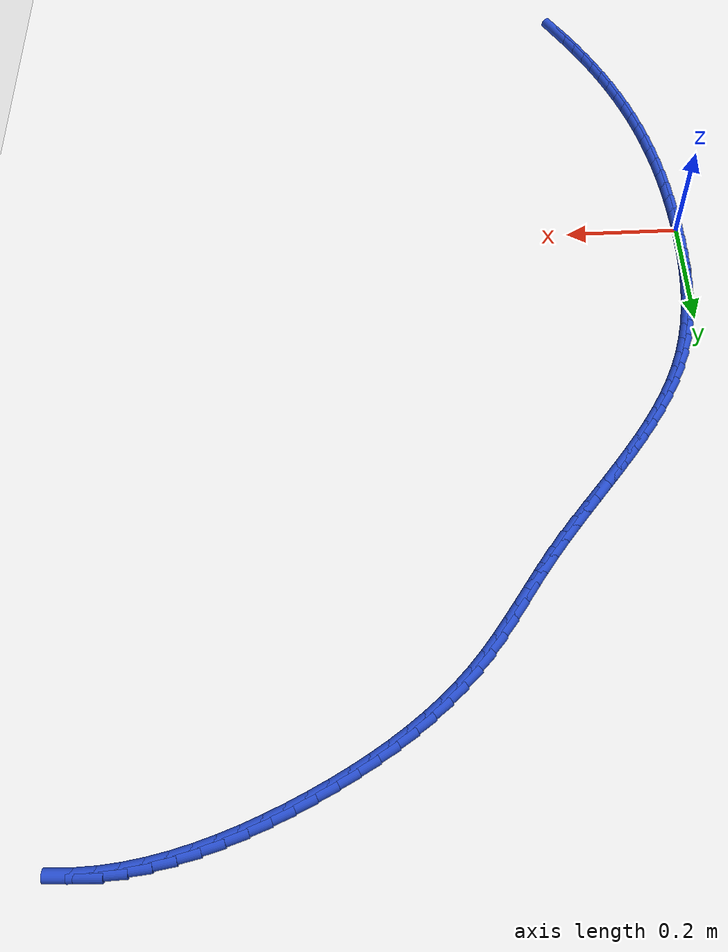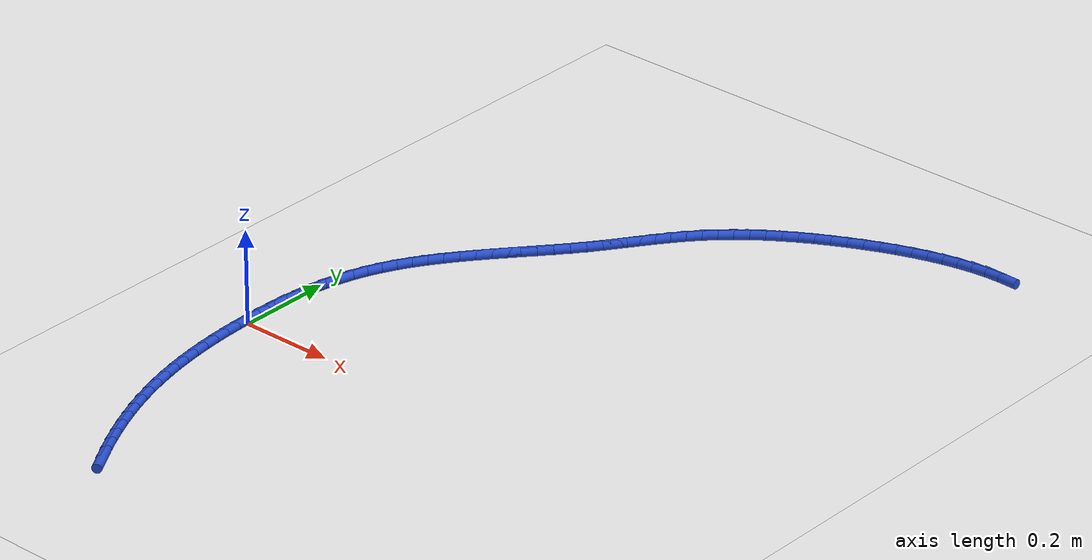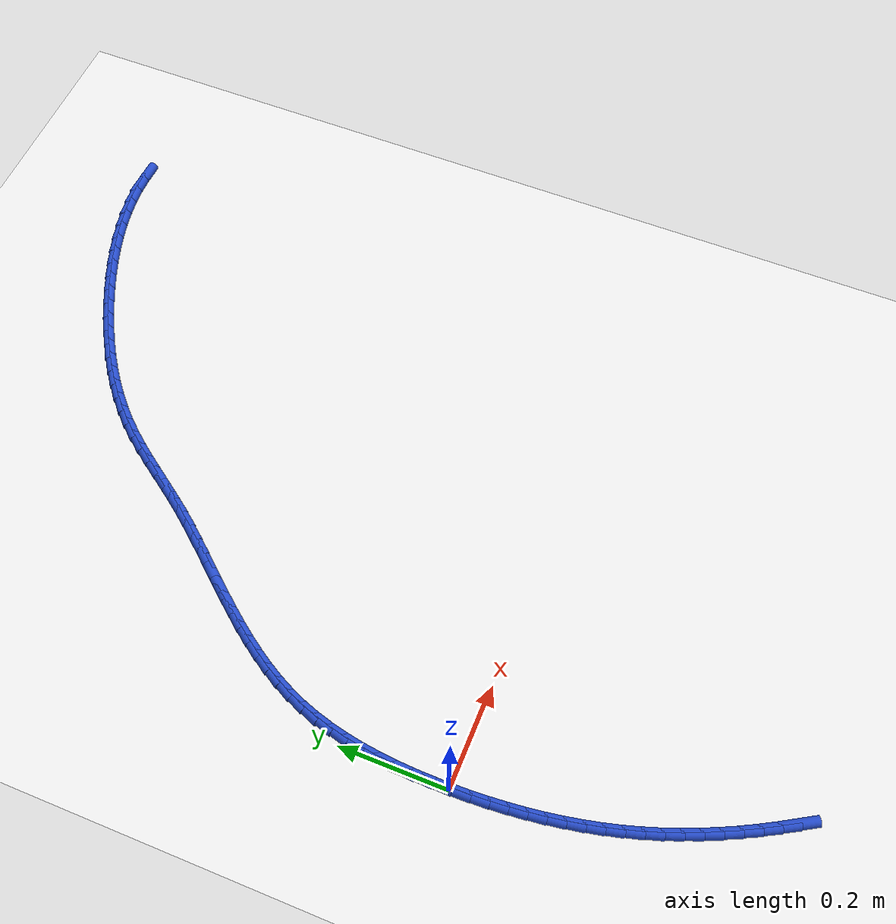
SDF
<sdf version="1.6">
 <world name="default">
  <model name="ground_plane">
   <static>1</static>
   <link name="link">
    <collision name="collision">
     <geometry><plane><normal>0 0 1</normal><size>100 100</size></plane></geometry>
     <surface><friction><ode><mu>100</mu><mu2>50</mu2></ode></friction></surface>
    </collision>
    <visual name="visual">
     <cast_shadows>0</cast_shadows>
     <geometry><plane><normal>0 0 1</normal><size>100 100</size></plane></geometry>
     <material>
      <script><uri>file://media/materials/scripts/gazebo.material</uri><name>Gazebo/WhiteGlow</name></script>
     </material>
    </visual>
   </link>
  </model>
  <model name="line">
   <link name="link_0">
    <pose>2.2551405187698492e-17 6.245004513516506e-17 0.01 0 1.57 -1.5640277802827918</pose>
    <collision name="collision">
     <geometry><cylinder><radius>0.01</radius><length>0.08</length></cylinder></geometry>
    </collision>
    <visual name="visual">
     <material>
      <script><name>Gazebo/Blue</name><uri>file://media/materials/scripts/gazebo.material</uri></script>
     </material>
     <geometry><cylinder><radius>0.01</radius><length>0.08</length></cylinder></geometry>
    </visual>
   </link>
   <link name="link_1">
    <pose>-0.00021804687882136633 0.03221423515539994 0.01 0 1.57 1.550294958255304</pose>
    <collision name="collision">
     <geometry><cylinder><radius>0.01</radius><length>0.08</length></cylinder></geometry>
    </collision>
    <visual name="visual">
     <material>
      <script><name>Gazebo/Blue</name><uri>file://media/materials/scripts/gazebo.material</uri></script>
     </material>
     <geometry><cylinder><radius>0.01</radius><length>0.08</length></cylinder></geometry>
    </visual>
   </link>
   <link name="link_2">
    <pose>0.00044337836184048755 0.06447220709343172 0.01 0 1.57 1.5193624895453874</pose>
    <collision name="collision">
     <geometry><cylinder><radius>0.01</radius><length>0.08</length></cylinder></geometry>
    </collision>
    <visual name="visual">
     <material>
      <script><name>Gazebo/Blue</name><uri>file://media/materials/scripts/gazebo.material</uri></script>
     </material>
     <geometry><cylinder><radius>0.01</radius><length>0.08</length></cylinder></geometry>
    </visual>
   </link>
   <link name="link_3">
    <pose>0.002100509430965067 0.09666248531929927 0.01 0 1.57 1.4845078215723275</pose>
    <collision name="collision">
     <geometry><cylinder><radius>0.01</radius><length>0.08</length></cylinder></geometry>
    </collision>
    <visual name="visual">
     <material>
      <script><name>Gazebo/Blue</name><uri>file://media/materials/scripts/gazebo.material</uri></script>
     </material>
     <geometry><cylinder><radius>0.01</radius><length>0.08</length></cylinder></geometry>
    </visual>
   </link>
   <link name="link_4">
    <pose>0.004869580037531858 0.12867363933820639 0.01 0 1.57 1.4454429252567342</pose>
    <collision name="collision">
     <geometry><cylinder><radius>0.01</radius><length>0.08</length></cylinder></geometry>
    </collision>
    <visual name="visual">
     <material>
      <script><name>Gazebo/Blue</name><uri>file://media/materials/scripts/gazebo.material</uri></script>
     </material>
     <geometry><cylinder><radius>0.01</radius><length>0.08</length></cylinder></geometry>
    </visual>
   </link>
   <link name="link_5">
    <pose>0.008866823890520344 0.16039423865535699 0.01 0 1.57 1.401863563391801</pose>
    <collision name="collision">
     <geometry><cylinder><radius>0.01</radius><length>0.08</length></cylinder></geometry>
    </collision>
    <visual name="visual">
     <material>
      <script><name>Gazebo/Blue</name><uri>file://media/materials/scripts/gazebo.material</uri></script>
     </material>
     <geometry><cylinder><radius>0.01</radius><length>0.08</length></cylinder></geometry>
    </visual>
   </link>
   <link name="link_6">
    <pose>0.014208474698910012 0.19171285277595485 0.01 0 1.57 1.3534674927857533</pose>
    <collision name="collision">
     <geometry><cylinder><radius>0.01</radius><length>0.08</length></cylinder></geometry>
    </collision>
    <visual name="visual">
     <material>
      <script><name>Gazebo/Blue</name><uri>file://media/materials/scripts/gazebo.material</uri></script>
     </material>
     <geometry><cylinder><radius>0.01</radius><length>0.08</length></cylinder></geometry>
    </visual>
   </link>
   <link name="link_7">
    <pose>0.02101076617168035 0.22251805120520388 0.01 0 1.57 1.2999806855689242</pose>
    <collision name="collision">
     <geometry><cylinder><radius>0.01</radius><length>0.08</length></cylinder></geometry>
    </collision>
    <visual name="visual">
     <material>
      <script><name>Gazebo/Blue</name><uri>file://media/materials/scripts/gazebo.material</uri></script>
     </material>
     <geometry><cylinder><radius>0.01</radius><length>0.08</length></cylinder></geometry>
    </visual>
   </link>
   <link name="link_8">
    <pose>0.02938993201781083 0.25269840344830774 0.01 0 1.57 1.2411931809515189</pose>
    <collision name="collision">
     <geometry><cylinder><radius>0.01</radius><length>0.08</length></cylinder></geometry>
    </collision>
    <visual name="visual">
     <material>
      <script><name>Gazebo/Blue</name><uri>file://media/materials/scripts/gazebo.material</uri></script>
     </material>
     <geometry><cylinder><radius>0.01</radius><length>0.08</length></cylinder></geometry>
    </visual>
   </link>
   <link name="link_9">
    <pose>0.03946220594628094 0.28214247901047046 0.01 0 1.57 1.1773535749368804</pose>
    <collision name="collision">
     <geometry><cylinder><radius>0.01</radius><length>0.08</length></cylinder></geometry>
    </collision>
    <visual name="visual">
     <material>
      <script><name>Gazebo/Blue</name><uri>file://media/materials/scripts/gazebo.material</uri></script>
     </material>
     <geometry><cylinder><radius>0.01</radius><length>0.08</length></cylinder></geometry>
    </visual>
   </link>
   <link name="link_10">
    <pose>0.051334707038882654 0.3107450504873547 0.01 0 1.57 1.114690556031248</pose>
    <collision name="collision">
     <geometry><cylinder><radius>0.01</radius><length>0.08</length></cylinder></geometry>
    </collision>
    <visual name="visual">
     <material>
      <script><name>Gazebo/Blue</name><uri>file://media/materials/scripts/gazebo.material</uri></script>
     </material>
     <geometry><cylinder><radius>0.01</radius><length>0.08</length></cylinder></geometry>
    </visual>
   </link>
   <link name="link_11">
    <pose>0.06495586619032379 0.33850888799980716 0.01 0 1.57 1.0588263026917826</pose>
    <collision name="collision">
     <geometry><cylinder><radius>0.01</radius><length>0.08</length></cylinder></geometry>
    </collision>
    <visual name="visual">
     <material>
      <script><name>Gazebo/Blue</name><uri>file://media/materials/scripts/gazebo.material</uri></script>
     </material>
     <geometry><cylinder><radius>0.01</radius><length>0.08</length></cylinder></geometry>
    </visual>
   </link>
   <link name="link_12">
    <pose>0.08013943676492061 0.3655284183965478 0.01 0 1.57 1.0102194662250645</pose>
    <collision name="collision">
     <geometry><cylinder><radius>0.01</radius><length>0.08</length></cylinder></geometry>
    </collision>
    <visual name="visual">
     <material>
      <script><name>Gazebo/Blue</name><uri>file://media/materials/scripts/gazebo.material</uri></script>
     </material>
     <geometry><cylinder><radius>0.01</radius><length>0.08</length></cylinder></geometry>
    </visual>
   </link>
   <link name="link_13">
    <pose>0.09669490018429547 0.39190097585826017 0.01 0 1.57 0.9689408644709877</pose>
    <collision name="collision">
     <geometry><cylinder><radius>0.01</radius><length>0.08</length></cylinder></geometry>
    </collision>
    <visual name="visual">
     <material>
      <script><name>Gazebo/Blue</name><uri>file://media/materials/scripts/gazebo.material</uri></script>
     </material>
     <geometry><cylinder><radius>0.01</radius><length>0.08</length></cylinder></geometry>
    </visual>
   </link>
   <link name="link_14">
    <pose>0.11443173787007076 0.41772389456562875 0.01 0 1.57 0.9349128984346179</pose>
    <collision name="collision">
     <geometry><cylinder><radius>0.01</radius><length>0.08</length></cylinder></geometry>
    </collision>
    <visual name="visual">
     <material>
      <script><name>Gazebo/Blue</name><uri>file://media/materials/scripts/gazebo.material</uri></script>
     </material>
     <geometry><cylinder><radius>0.01</radius><length>0.08</length></cylinder></geometry>
    </visual>
   </link>
   <link name="link_15">
    <pose>0.13315943124386873 0.44309450869933714 0.01 0 1.57 0.9079767573073776</pose>
    <collision name="collision">
     <geometry><cylinder><radius>0.01</radius><length>0.08</length></cylinder></geometry>
    </collision>
    <visual name="visual">
     <material>
      <script><name>Gazebo/Blue</name><uri>file://media/materials/scripts/gazebo.material</uri></script>
     </material>
     <geometry><cylinder><radius>0.01</radius><length>0.08</length></cylinder></geometry>
    </visual>
   </link>
   <link name="link_16">
    <pose>0.15268746172731182 0.4681101524400696 0.01 0 1.57 0.8879455333379783</pose>
    <collision name="collision">
     <geometry><cylinder><radius>0.01</radius><length>0.08</length></cylinder></geometry>
    </collision>
    <visual name="visual">
     <material>
      <script><name>Gazebo/Blue</name><uri>file://media/materials/scripts/gazebo.material</uri></script>
     </material>
     <geometry><cylinder><radius>0.01</radius><length>0.08</length></cylinder></geometry>
    </visual>
   </link>
   <link name="link_17">
    <pose>0.17282531074202226 0.49286815996851 0.01 0 1.57 0.874642692186686</pose>
    <collision name="collision">
     <geometry><cylinder><radius>0.01</radius><length>0.08</length></cylinder></geometry>
    </collision>
    <visual name="visual">
     <material>
      <script><name>Gazebo/Blue</name><uri>file://media/materials/scripts/gazebo.material</uri></script>
     </material>
     <geometry><cylinder><radius>0.01</radius><length>0.08</length></cylinder></geometry>
    </visual>
   </link>
   <link name="link_18">
    <pose>0.1933824597096225 0.5174658654653426 0.01 0 1.57 0.8679276673018819</pose>
    <collision name="collision">
     <geometry><cylinder><radius>0.01</radius><length>0.08</length></cylinder></geometry>
    </collision>
    <visual name="visual">
     <material>
      <script><name>Gazebo/Blue</name><uri>file://media/materials/scripts/gazebo.material</uri></script>
     </material>
     <geometry><cylinder><radius>0.01</radius><length>0.08</length></cylinder></geometry>
    </visual>
   </link>
   <link name="link_19">
    <pose>0.21416839005173482 0.5420006031112512 0.01 0 1.57 0.8677109606641003</pose>
    <collision name="collision">
     <geometry><cylinder><radius>0.01</radius><length>0.08</length></cylinder></geometry>
    </collision>
    <visual name="visual">
     <material>
      <script><name>Gazebo/Blue</name><uri>file://media/materials/scripts/gazebo.material</uri></script>
     </material>
     <geometry><cylinder><radius>0.01</radius><length>0.08</length></cylinder></geometry>
    </visual>
   </link>
   <link name="link_20">
    <pose>0.23499258318998162 0.5665697070869198 0.01 0 1.57 0.8739607717565215</pose>
    <collision name="collision">
     <geometry><cylinder><radius>0.01</radius><length>0.08</length></cylinder></geometry>
    </collision>
    <visual name="visual">
     <material>
      <script><name>Gazebo/Blue</name><uri>file://media/materials/scripts/gazebo.material</uri></script>
     </material>
     <geometry><cylinder><radius>0.01</radius><length>0.08</length></cylinder></geometry>
    </visual>
   </link>
   <link name="link_21">
    <pose>0.2556645205459852 0.5912705115730326 0.01 0 1.57 0.886702367492394</pose>
    <collision name="collision">
     <geometry><cylinder><radius>0.01</radius><length>0.08</length></cylinder></geometry>
    </collision>
    <visual name="visual">
     <material>
      <script><name>Gazebo/Blue</name><uri>file://media/materials/scripts/gazebo.material</uri></script>
     </material>
     <geometry><cylinder><radius>0.01</radius><length>0.08</length></cylinder></geometry>
    </visual>
   </link>
   <link name="link_22">
    <pose>0.27599368354136783 0.6162003507502734 0.01 0 1.57 0.9060104577766708</pose>
    <collision name="collision">
     <geometry><cylinder><radius>0.01</radius><length>0.08</length></cylinder></geometry>
    </collision>
    <visual name="visual">
     <material>
      <script><name>Gazebo/Blue</name><uri>file://media/materials/scripts/gazebo.material</uri></script>
     </material>
     <geometry><cylinder><radius>0.01</radius><length>0.08</length></cylinder></geometry>
    </visual>
   </link>
   <link name="link_23">
    <pose>0.29578955359775205 0.6414565587993264 0.01 0 1.57 0.9312137643740723</pose>
    <collision name="collision">
     <geometry><cylinder><radius>0.01</radius><length>0.08</length></cylinder></geometry>
    </collision>
    <visual name="visual">
     <material>
      <script><name>Gazebo/Blue</name><uri>file://media/materials/scripts/gazebo.material</uri></script>
     </material>
     <geometry><cylinder><radius>0.01</radius><length>0.08</length></cylinder></geometry>
    </visual>
   </link>
   <link name="link_24">
    <pose>0.3148822085674277 0.6671223453819348 0.01 0 1.57 0.9516073168095652</pose>
    <collision name="collision">
     <geometry><cylinder><radius>0.01</radius><length>0.08</length></cylinder></geometry>
    </collision>
    <visual name="visual">
     <material>
      <script><name>Gazebo/Blue</name><uri>file://media/materials/scripts/gazebo.material</uri></script>
     </material>
     <geometry><cylinder><radius>0.01</radius><length>0.08</length></cylinder></geometry>
    </visual>
   </link>
   <link name="link_25">
    <pose>0.3333860713298848 0.693085923425355 0.01 0 1.57 0.9592552546301093</pose>
    <collision name="collision">
     <geometry><cylinder><radius>0.01</radius><length>0.08</length></cylinder></geometry>
    </collision>
    <visual name="visual">
     <material>
      <script><name>Gazebo/Blue</name><uri>file://media/materials/scripts/gazebo.material</uri></script>
     </material>
     <geometry><cylinder><radius>0.01</radius><length>0.08</length></cylinder></geometry>
    </visual>
   </link>
   <link name="link_26">
    <pose>0.3516228686630927 0.7190933420087593 0.01 0 1.57 0.9538451383325849</pose>
    <collision name="collision">
     <geometry><cylinder><radius>0.01</radius><length>0.08</length></cylinder></geometry>
    </collision>
    <visual name="visual">
     <material>
      <script><name>Gazebo/Blue</name><uri>file://media/materials/scripts/gazebo.material</uri></script>
     </material>
     <geometry><cylinder><radius>0.01</radius><length>0.08</length></cylinder></geometry>
    </visual>
   </link>
   <link name="link_27">
    <pose>0.3699190316049898 0.7448874241470527 0.01 0 1.57 0.9351942945684564</pose>
    <collision name="collision">
     <geometry><cylinder><radius>0.01</radius><length>0.08</length></cylinder></geometry>
    </collision>
    <visual name="visual">
     <material>
      <script><name>Gazebo/Blue</name><uri>file://media/materials/scripts/gazebo.material</uri></script>
     </material>
     <geometry><cylinder><radius>0.01</radius><length>0.08</length></cylinder></geometry>
    </visual>
   </link>
   <link name="link_28">
    <pose>0.3886009911935139 0.7702109928551397 0.01 0 1.57 0.90309856681486</pose>
    <collision name="collision">
     <geometry><cylinder><radius>0.01</radius><length>0.08</length></cylinder></geometry>
    </collision>
    <visual name="visual">
     <material>
      <script><name>Gazebo/Blue</name><uri>file://media/materials/scripts/gazebo.material</uri></script>
     </material>
     <geometry><cylinder><radius>0.01</radius><length>0.08</length></cylinder></geometry>
    </visual>
   </link>
   <link name="link_29">
    <pose>0.4079951784666028 0.7948068711479248 0.01 0 1.57 0.8574647933892661</pose>
    <collision name="collision">
     <geometry><cylinder><radius>0.01</radius><length>0.08</length></cylinder></geometry>
    </collision>
    <visual name="visual">
     <material>
      <script><name>Gazebo/Blue</name><uri>file://media/materials/scripts/gazebo.material</uri></script>
     </material>
     <geometry><cylinder><radius>0.01</radius><length>0.08</length></cylinder></geometry>
    </visual>
   </link>
   <link name="link_30">
    <pose>0.42842721465625355 0.8184184916501661 0.01 0 1.57 0.8033062774453298</pose>
    <collision name="collision">
     <geometry><cylinder><radius>0.01</radius><length>0.08</length></cylinder></geometry>
    </collision>
    <visual name="visual">
     <material>
      <script><name>Gazebo/Blue</name><uri>file://media/materials/scripts/gazebo.material</uri></script>
     </material>
     <geometry><cylinder><radius>0.01</radius><length>0.08</length></cylinder></geometry>
    </visual>
   </link>
   <link name="link_31">
    <pose>0.4500999522898263 0.8408817054392804 0.01 0 1.57 0.7509801072675774</pose>
    <collision name="collision">
     <geometry><cylinder><radius>0.01</radius><length>0.08</length></cylinder></geometry>
    </collision>
    <visual name="visual">
     <material>
      <script><name>Gazebo/Blue</name><uri>file://media/materials/scripts/gazebo.material</uri></script>
     </material>
     <geometry><cylinder><radius>0.01</radius><length>0.08</length></cylinder></geometry>
    </visual>
   </link>
   <link name="link_32">
    <pose>0.47296315898855296 0.8622228821412431 0.01 0 1.57 0.7018883308049515</pose>
    <collision name="collision">
     <geometry><cylinder><radius>0.01</radius><length>0.08</length></cylinder></geometry>
    </collision>
    <visual name="visual">
     <material>
      <script><name>Gazebo/Blue</name><uri>file://media/materials/scripts/gazebo.material</uri></script>
     </material>
     <geometry><cylinder><radius>0.01</radius><length>0.08</length></cylinder></geometry>
    </visual>
   </link>
   <link name="link_33">
    <pose>0.49693536993535103 0.8824919026964977 0.01 0 1.57 0.6561018103679742</pose>
    <collision name="collision">
     <geometry><cylinder><radius>0.01</radius><length>0.08</length></cylinder></geometry>
    </collision>
    <visual name="visual">
     <material>
      <script><name>Gazebo/Blue</name><uri>file://media/materials/scripts/gazebo.material</uri></script>
     </material>
     <geometry><cylinder><radius>0.01</radius><length>0.08</length></cylinder></geometry>
    </visual>
   </link>
   <link name="link_34">
    <pose>0.5219351203131383 0.9017386480454888 0.01 0 1.57 0.6136242464177583</pose>
    <collision name="collision">
     <geometry><cylinder><radius>0.01</radius><length>0.08</length></cylinder></geometry>
    </collision>
    <visual name="visual">
     <material>
      <script><name>Gazebo/Blue</name><uri>file://media/materials/scripts/gazebo.material</uri></script>
     </material>
     <geometry><cylinder><radius>0.01</radius><length>0.08</length></cylinder></geometry>
    </visual>
   </link>
   <link name="link_35">
    <pose>0.5478809453048326 0.9200129991286612 0.01 0 1.57 0.5744076051759945</pose>
    <collision name="collision">
     <geometry><cylinder><radius>0.01</radius><length>0.08</length></cylinder></geometry>
    </collision>
    <visual name="visual">
     <material>
      <script><name>Gazebo/Blue</name><uri>file://media/materials/scripts/gazebo.material</uri></script>
     </material>
     <geometry><cylinder><radius>0.01</radius><length>0.08</length></cylinder></geometry>
    </visual>
   </link>
   <link name="link_36">
    <pose>0.5746913800933513 0.9373648368864588 0.01 0 1.57 0.5383666690072105</pose>
    <collision name="collision">
     <geometry><cylinder><radius>0.01</radius><length>0.08</length></cylinder></geometry>
    </collision>
    <visual name="visual">
     <material>
      <script><name>Gazebo/Blue</name><uri>file://media/materials/scripts/gazebo.material</uri></script>
     </material>
     <geometry><cylinder><radius>0.01</radius><length>0.08</length></cylinder></geometry>
    </visual>
   </link>
   <link name="link_37">
    <pose>0.6022849598616123 0.9538440422593262 0.01 0 1.57 0.5053918472926673</pose>
    <collision name="collision">
     <geometry><cylinder><radius>0.01</radius><length>0.08</length></cylinder></geometry>
    </collision>
    <visual name="visual">
     <material>
      <script><name>Gazebo/Blue</name><uri>file://media/materials/scripts/gazebo.material</uri></script>
     </material>
     <geometry><cylinder><radius>0.01</radius><length>0.08</length></cylinder></geometry>
    </visual>
   </link>
   <link name="link_38">
    <pose>0.6305802197925333 0.9695004961877077 0.01 0 1.57 0.4753598841261037</pose>
    <collision name="collision">
     <geometry><cylinder><radius>0.01</radius><length>0.08</length></cylinder></geometry>
    </collision>
    <visual name="visual">
     <material>
      <script><name>Gazebo/Blue</name><uri>file://media/materials/scripts/gazebo.material</uri></script>
     </material>
     <geometry><cylinder><radius>0.01</radius><length>0.08</length></cylinder></geometry>
    </visual>
   </link>
   <link name="link_39">
    <pose>0.659495695069032 0.984384079612048 0.01 0 1.57 0.44732672768013937</pose>
    <collision name="collision">
     <geometry><cylinder><radius>0.01</radius><length>0.08</length></cylinder></geometry>
    </collision>
    <visual name="visual">
     <material>
      <script><name>Gazebo/Blue</name><uri>file://media/materials/scripts/gazebo.material</uri></script>
     </material>
     <geometry><cylinder><radius>0.01</radius><length>0.08</length></cylinder></geometry>
    </visual>
   </link>
   <link name="link_40">
    <pose>0.6889512959813663 0.9985157649912986 0.01 0 1.57 0.417384771851742</pose>
    <collision name="collision">
     <geometry><cylinder><radius>0.01</radius><length>0.08</length></cylinder></geometry>
    </collision>
    <visual name="visual">
     <material>
      <script><name>Gazebo/Blue</name><uri>file://media/materials/scripts/gazebo.material</uri></script>
     </material>
     <geometry><cylinder><radius>0.01</radius><length>0.08</length></cylinder></geometry>
    </visual>
   </link>
   <link name="link_41">
    <pose>0.7188732211885388 1.0117843262380575 0.01 0 1.57 0.38419602977444756</pose>
    <collision name="collision">
     <geometry><cylinder><radius>0.01</radius><length>0.08</length></cylinder></geometry>
    </collision>
    <visual name="visual">
     <material>
      <script><name>Gazebo/Blue</name><uri>file://media/materials/scripts/gazebo.material</uri></script>
     </material>
     <geometry><cylinder><radius>0.01</radius><length>0.08</length></cylinder></geometry>
    </visual>
   </link>
   <link name="link_42">
    <pose>0.7491894658521274 1.0240407699140095 0.01 0 1.57 0.3474453531147877</pose>
    <collision name="collision">
     <geometry><cylinder><radius>0.01</radius><length>0.08</length></cylinder></geometry>
    </collision>
    <visual name="visual">
     <material>
      <script><name>Gazebo/Blue</name><uri>file://media/materials/scripts/gazebo.material</uri></script>
     </material>
     <geometry><cylinder><radius>0.01</radius><length>0.08</length></cylinder></geometry>
    </visual>
   </link>
   <link name="link_43">
    <pose>0.7798280252733434 1.035136099645379 0.01 0 1.57 0.3067864797603333</pose>
    <collision name="collision">
     <geometry><cylinder><radius>0.01</radius><length>0.08</length></cylinder></geometry>
    </collision>
    <visual name="visual">
     <material>
      <script><name>Gazebo/Blue</name><uri>file://media/materials/scripts/gazebo.material</uri></script>
     </material>
     <geometry><cylinder><radius>0.01</radius><length>0.08</length></cylinder></geometry>
    </visual>
   </link>
   <link name="link_44">
    <pose>0.8107168947533977 1.0449213190583901 0.01 0 1.57 0.26185009065658865</pose>
    <collision name="collision">
     <geometry><cylinder><radius>0.01</radius><length>0.08</length></cylinder></geometry>
    </collision>
    <visual name="visual">
     <material>
      <script><name>Gazebo/Blue</name><uri>file://media/materials/scripts/gazebo.material</uri></script>
     </material>
     <geometry><cylinder><radius>0.01</radius><length>0.08</length></cylinder></geometry>
    </visual>
   </link>
   <link name="link_45">
    <pose>0.8417840695935013 1.0532474317792673 0.01 0 1.57 0.21225787239913654</pose>
    <collision name="collision">
     <geometry><cylinder><radius>0.01</radius><length>0.08</length></cylinder></geometry>
    </collision>
    <visual name="visual">
     <material>
      <script><name>Gazebo/Blue</name><uri>file://media/materials/scripts/gazebo.material</uri></script>
     </material>
     <geometry><cylinder><radius>0.01</radius><length>0.08</length></cylinder></geometry>
    </visual>
   </link>
   <link name="link_46">
    <pose>0.8729575450948656 1.0599654414342345 0.01 0 1.57 0.15764489733930329</pose>
    <collision name="collision">
     <geometry><cylinder><radius>0.01</radius><length>0.08</length></cylinder></geometry>
    </collision>
    <visual name="visual">
     <material>
      <script><name>Gazebo/Blue</name><uri>file://media/materials/scripts/gazebo.material</uri></script>
     </material>
     <geometry><cylinder><radius>0.01</radius><length>0.08</length></cylinder></geometry>
    </visual>
   </link>
   <link name="link_47">
    <pose>0.904165316558701 1.064926351649516 0.01 0 1.57 0.09769277592915032</pose>
    <collision name="collision">
     <geometry><cylinder><radius>0.01</radius><length>0.08</length></cylinder></geometry>
    </collision>
    <visual name="visual">
     <material>
      <script><name>Gazebo/Blue</name><uri>file://media/materials/scripts/gazebo.material</uri></script>
     </material>
     <geometry><cylinder><radius>0.01</radius><length>0.08</length></cylinder></geometry>
    </visual>
   </link>
   <link name="link_48">
    <pose>0.9353353792862192 1.067981166051336 0.01 0 1.57 0.032175336893997</pose>
    <collision name="collision">
     <geometry><cylinder><radius>0.01</radius><length>0.08</length></cylinder></geometry>
    </collision>
    <visual name="visual">
     <material>
      <script><name>Gazebo/Blue</name><uri>file://media/materials/scripts/gazebo.material</uri></script>
     </material>
     <geometry><cylinder><radius>0.01</radius><length>0.08</length></cylinder></geometry>
    </visual>
   </link>
   <link name="link_49">
    <pose>0.9663957285786312 1.068980888265919 0.01 0 1.57 -0.038983469901849005</pose>
    <collision name="collision">
     <geometry><cylinder><radius>0.01</radius><length>0.08</length></cylinder></geometry>
    </collision>
    <visual name="visual">
     <material>
      <script><name>Gazebo/Blue</name><uri>file://media/materials/scripts/gazebo.material</uri></script>
     </material>
     <geometry><cylinder><radius>0.01</radius><length>0.08</length></cylinder></geometry>
    </visual>
   </link>
   <link name="link_192">
    <pose>0.15873278770579158 -0.5400181294528917 0.01 0 1.57 -1.0232077169378109</pose>
    <collision name="collision">
     <geometry><cylinder><radius>0.01</radius><length>0.08</length></cylinder></geometry>
    </collision>
    <visual name="visual">
     <material>
      <script><name>Gazebo/Blue</name><uri>file://media/materials/scripts/gazebo.material</uri></script>
     </material>
     <geometry><cylinder><radius>0.01</radius><length>0.08</length></cylinder></geometry>
    </visual>
   </link>
   <link name="link_193">
    <pose>0.14220522928136203 -0.5129145418508296 0.01 0 1.57 -1.0508107575256826</pose>
    <collision name="collision">
     <geometry><cylinder><radius>0.01</radius><length>0.08</length></cylinder></geometry>
    </collision>
    <visual name="visual">
     <material>
      <script><name>Gazebo/Blue</name><uri>file://media/materials/scripts/gazebo.material</uri></script>
     </material>
     <geometry><cylinder><radius>0.01</radius><length>0.08</length></cylinder></geometry>
    </visual>
   </link>
   <link name="link_194">
    <pose>0.12642362637575105 -0.4853504776107603 0.01 0 1.57 -1.0791997281103185</pose>
    <collision name="collision">
     <geometry><cylinder><radius>0.01</radius><length>0.08</length></cylinder></geometry>
    </collision>
    <visual name="visual">
     <material>
      <script><name>Gazebo/Blue</name><uri>file://media/materials/scripts/gazebo.material</uri></script>
     </material>
     <geometry><cylinder><radius>0.01</radius><length>0.08</length></cylinder></geometry>
    </visual>
   </link>
   <link name="link_195">
    <pose>0.11143122392310123 -0.45735036190142614 0.01 0 1.57 -1.1084423691884921</pose>
    <collision name="collision">
     <geometry><cylinder><radius>0.01</radius><length>0.08</length></cylinder></geometry>
    </collision>
    <visual name="visual">
     <material>
      <script><name>Gazebo/Blue</name><uri>file://media/materials/scripts/gazebo.material</uri></script>
     </material>
     <geometry><cylinder><radius>0.01</radius><length>0.08</length></cylinder></geometry>
    </visual>
   </link>
   <link name="link_196">
    <pose>0.09727126685755481 -0.42893861989156823 0.01 0 1.57 -1.1386047875870247</pose>
    <collision name="collision">
     <geometry><cylinder><radius>0.01</radius><length>0.08</length></cylinder></geometry>
    </collision>
    <visual name="visual">
     <material>
      <script><name>Gazebo/Blue</name><uri>file://media/materials/scripts/gazebo.material</uri></script>
     </material>
     <geometry><cylinder><radius>0.01</radius><length>0.08</length></cylinder></geometry>
    </visual>
   </link>
   <link name="link_197">
    <pose>0.08398700011325512 -0.4001396767499296 0.01 0 1.57 -1.1697508278717272</pose>
    <collision name="collision">
     <geometry><cylinder><radius>0.01</radius><length>0.08</length></cylinder></geometry>
    </collision>
    <visual name="visual">
     <material>
      <script><name>Gazebo/Blue</name><uri>file://media/materials/scripts/gazebo.material</uri></script>
     </material>
     <geometry><cylinder><radius>0.01</radius><length>0.08</length></cylinder></geometry>
    </visual>
   </link>
   <link name="link_198">
    <pose>0.07162166862434435 -0.3709779576452519 0.01 0 1.57 -1.2019412473898896</pose>
    <collision name="collision">
     <geometry><cylinder><radius>0.01</radius><length>0.08</length></cylinder></geometry>
    </collision>
    <visual name="visual">
     <material>
      <script><name>Gazebo/Blue</name><uri>file://media/materials/scripts/gazebo.material</uri></script>
     </material>
     <geometry><cylinder><radius>0.01</radius><length>0.08</length></cylinder></geometry>
    </visual>
   </link>
   <link name="link_199">
    <pose>0.060218517324965144 -0.3414778877462765 0.01 0 1.57 -1.2352326789233212</pose>
    <collision name="collision">
     <geometry><cylinder><radius>0.01</radius><length>0.08</length></cylinder></geometry>
    </collision>
    <visual name="visual">
     <material>
      <script><name>Gazebo/Blue</name><uri>file://media/materials/scripts/gazebo.material</uri></script>
     </material>
     <geometry><cylinder><radius>0.01</radius><length>0.08</length></cylinder></geometry>
    </visual>
   </link>
   <link name="link_200">
    <pose>0.04982079114926007 -0.3116638922217458 0.01 0 1.57 -1.2696458006073166</pose>
    <collision name="collision">
     <geometry><cylinder><radius>0.01</radius><length>0.08</length></cylinder></geometry>
    </collision>
    <visual name="visual">
     <material>
      <script><name>Gazebo/Blue</name><uri>file://media/materials/scripts/gazebo.material</uri></script>
     </material>
     <geometry><cylinder><radius>0.01</radius><length>0.08</length></cylinder></geometry>
    </visual>
   </link>
   <link name="link_201">
    <pose>0.04047067566130251 -0.2815602340347165 0.01 0 1.57 -1.3042424025991333</pose>
    <collision name="collision">
     <geometry><cylinder><radius>0.01</radius><length>0.08</length></cylinder></geometry>
    </collision>
    <visual name="visual">
     <material>
      <script><name>Gazebo/Blue</name><uri>file://media/materials/scripts/gazebo.material</uri></script>
     </material>
     <geometry><cylinder><radius>0.01</radius><length>0.08</length></cylinder></geometry>
    </visual>
   </link>
   <link name="link_202">
    <pose>0.03217695865864197 -0.2511860624417595 0.01 0 1.57 -1.3378363516202572</pose>
    <collision name="collision">
     <geometry><cylinder><radius>0.01</radius><length>0.08</length></cylinder></geometry>
    </collision>
    <visual name="visual">
     <material>
      <script><name>Gazebo/Blue</name><uri>file://media/materials/scripts/gazebo.material</uri></script>
     </material>
     <geometry><cylinder><radius>0.01</radius><length>0.08</length></cylinder></geometry>
    </visual>
   </link>
   <link name="link_203">
    <pose>0.02490907593254444 -0.22055450130821044 0.01 0 1.57 -1.3702997872730367</pose>
    <collision name="collision">
     <geometry><cylinder><radius>0.01</radius><length>0.08</length></cylinder></geometry>
    </collision>
    <visual name="visual">
     <material>
      <script><name>Gazebo/Blue</name><uri>file://media/materials/scripts/gazebo.material</uri></script>
     </material>
     <geometry><cylinder><radius>0.01</radius><length>0.08</length></cylinder></geometry>
    </visual>
   </link>
   <link name="link_204">
    <pose>0.018634202999752318 -0.1896783284169642 0.01 0 1.57 -1.4015837637467738</pose>
    <collision name="collision">
     <geometry><cylinder><radius>0.01</radius><length>0.08</length></cylinder></geometry>
    </collision>
    <visual name="visual">
     <material>
      <script><name>Gazebo/Blue</name><uri>file://media/materials/scripts/gazebo.material</uri></script>
     </material>
     <geometry><cylinder><radius>0.01</radius><length>0.08</length></cylinder></geometry>
    </visual>
   </link>
   <link name="link_205">
    <pose>0.01331951537700824 -0.15857032155091647 0.01 0 1.57 -1.4316522354761703</pose>
    <collision name="collision">
     <geometry><cylinder><radius>0.01</radius><length>0.08</length></cylinder></geometry>
    </collision>
    <visual name="visual">
     <material>
      <script><name>Gazebo/Blue</name><uri>file://media/materials/scripts/gazebo.material</uri></script>
     </material>
     <geometry><cylinder><radius>0.01</radius><length>0.08</length></cylinder></geometry>
    </visual>
   </link>
   <link name="link_206">
    <pose>0.008932188581054809 -0.12724325849296278 0.01 0 1.57 -1.460481012447733</pose>
    <collision name="collision">
     <geometry><cylinder><radius>0.01</radius><length>0.08</length></cylinder></geometry>
    </collision>
    <visual name="visual">
     <material>
      <script><name>Gazebo/Blue</name><uri>file://media/materials/scripts/gazebo.material</uri></script>
     </material>
     <geometry><cylinder><radius>0.01</radius><length>0.08</length></cylinder></geometry>
    </visual>
   </link>
   <link name="link_207">
    <pose>0.00543939812863465 -0.09570991702599867 0.01 0 1.57 -1.4880565497152844</pose>
    <collision name="collision">
     <geometry><cylinder><radius>0.01</radius><length>0.08</length></cylinder></geometry>
    </collision>
    <visual name="visual">
     <material>
      <script><name>Gazebo/Blue</name><uri>file://media/materials/scripts/gazebo.material</uri></script>
     </material>
     <geometry><cylinder><radius>0.01</radius><length>0.08</length></cylinder></geometry>
    </visual>
   </link>
   <link name="link_208">
    <pose>0.002808319536490387 -0.0639830749329198 0.01 0 1.57 -1.5143746461077736</pose>
    <collision name="collision">
     <geometry><cylinder><radius>0.01</radius><length>0.08</length></cylinder></geometry>
    </collision>
    <visual name="visual">
     <material>
      <script><name>Gazebo/Blue</name><uri>file://media/materials/scripts/gazebo.material</uri></script>
     </material>
     <geometry><cylinder><radius>0.01</radius><length>0.08</length></cylinder></geometry>
    </visual>
   </link>
   <link name="link_209">
    <pose>0.0010061283213646031 -0.03207550999662088 0.01 0 1.57 -1.5394391158567673</pose>
    <collision name="collision">
     <geometry><cylinder><radius>0.01</radius><length>0.08</length></cylinder></geometry>
    </collision>
    <visual name="visual">
     <material>
      <script><name>Gazebo/Blue</name><uri>file://media/materials/scripts/gazebo.material</uri></script>
     </material>
     <geometry><cylinder><radius>0.01</radius><length>0.08</length></cylinder></geometry>
    </visual>
   </link>
   <link name="link_210">
    <pose>1.951563910473908e-17 1.6653345369377348e-16 0.01 0 1.57 -1.563260484126767</pose>
    <collision name="collision">
     <geometry><cylinder><radius>0.01</radius><length>0.08</length></cylinder></geometry>
    </collision>
    <visual name="visual">
     <material>
      <script><name>Gazebo/Blue</name><uri>file://media/materials/scripts/gazebo.material</uri></script>
     </material>
     <geometry><cylinder><radius>0.01</radius><length>0.08</length></cylinder></geometry>
    </visual>
   </link>
   <link name="link_211">
    <pose>-0.00024288991086084382 0.032230677274050025 0.01 0 1.57 1.5557379089546461</pose>
    <collision name="collision">
     <geometry><cylinder><radius>0.01</radius><length>0.08</length></cylinder></geometry>
    </collision>
    <visual name="visual">
     <material>
      <script><name>Gazebo/Blue</name><uri>file://media/materials/scripts/gazebo.material</uri></script>
     </material>
     <geometry><cylinder><radius>0.01</radius><length>0.08</length></cylinder></geometry>
    </visual>
   </link>
   <link name="link_212">
    <pose>0.0002446341055247015 0.06460374404263391 0.01 0 1.57 1.5670096587017217</pose>
    <collision name="collision">
     <geometry><cylinder><radius>0.01</radius><length>0.08</length></cylinder></geometry>
    </collision>
    <visual name="visual">
     <material>
      <script><name>Gazebo/Blue</name><uri>file://media/materials/scripts/gazebo.material</uri></script>
     </material>
     <geometry><cylinder><radius>0.01</radius><length>0.08</length></cylinder></geometry>
    </visual>
   </link>
  </model>
 </world>
</sdf>
